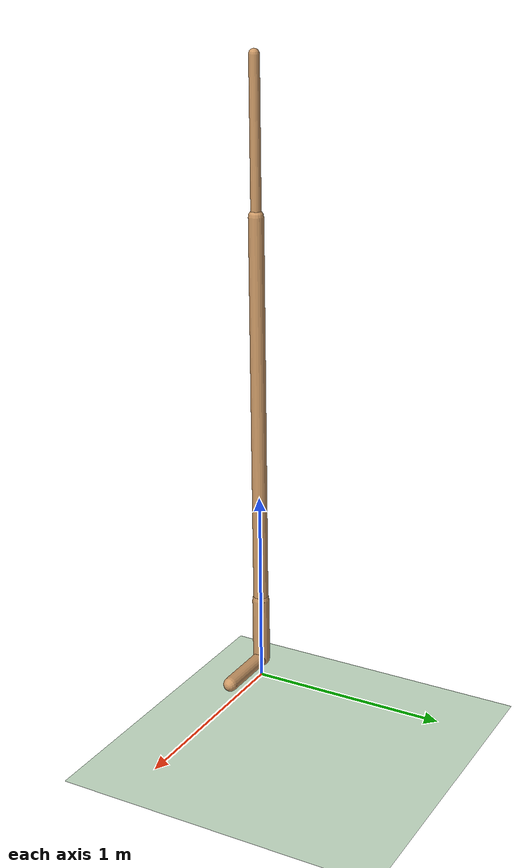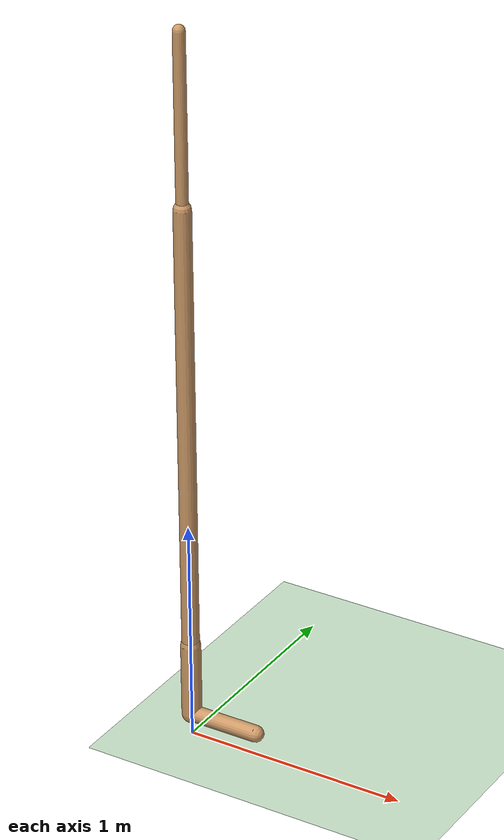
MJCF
<mujoco model="walker2d">
  <compiler angle="degree" inertiafromgeom="true" />
  <default>
    <joint armature="0.01" damping=".1" limited="true" />
    <geom conaffinity="0" condim="3" contype="1" density="1000" friction=".7 .1 .1" rgba="0.8 0.6 .4 1" />
  </default>
  <option integrator="RK4" timestep="0.002" />
  <worldbody>
    <light cutoff="100" diffuse="1 1 1" dir="-0 0 -1.3" directional="true" exponent="1" pos="0 0 1.3" specular=".1 .1 .1" />
    <geom conaffinity="1" condim="3" name="floor" pos="0 0 0" rgba="0.8 0.9 0.8 1" size="40 40 40" type="plane" material="MatPlane" />
    <body name="torso" pos="0 0 2.7992141008377076">
      <camera name="track" mode="trackcom" pos="0 -5 -1.25" xyaxes="1 0 0 0 0 1" />
      <joint armature="0" axis="1 0 0" damping="0" limited="false" name="rootx" pos="0 0 -1.25" stiffness="0" type="slide" />
      <joint armature="0" axis="0 0 1" damping="0" limited="false" name="rootz" pos="0 0 -1.25" ref="1.25" stiffness="0" type="slide" />
      <joint armature="0" axis="0 1 0" damping="0" limited="false" name="rooty" pos="0 0 0" stiffness="0" type="hinge" />
      <geom friction="0.9" name="torso_geom" size="0.025823641568422318 0.3715420961380005" type="capsule" />
      <body name="thigh" pos="0 0 -0.3715420961380005">
        <joint axis="0 -1 0" name="thigh_joint" pos="0 0 0" range="-150 0" type="hinge" />
        <site name="torso_thigh_site" pos="0 0 0" size="0.01" type="sphere" rgba="1 0 0 0.5" />
        <geom friction="0.9" pos="0 0 -0.9955577850341797" name="thigh_geom" size="0.03779085725545883 0.9955577850341797" type="capsule" />
        <body name="leg" pos="0 0 -2.159393787384033">
          <joint axis="0 -1 0" name="leg_joint" pos="0 0 0.16827821731567383" range="-150 0" type="hinge" />
          <site name="thigh_leg_site" pos="0 0 0.25" size="0.01" type="sphere" rgba="1 0 0 0.5" />
          <geom friction="0.9" name="leg_geom" size="0.04342787712812424 0.16827821731567383" type="capsule" />
          <body name="foot" pos="0.31546908617019653 0 -0.2682782173156738">
            <joint axis="0 -1 0" name="foot_joint" pos="-0.31546908617019653 0 0.1" range="-45 45" type="hinge" />
            <site name="leg_foot_site" pos="-0.2 0 0.1" size="0.01" type="sphere" rgba="1 0 0 0.5" />
            <geom friction="0.9" pos="-0.15773454308509827 0 0.1" quat="0.70710678118654757 0 -0.70710678118654746 0" name="foot_geom" size="0.036285169422626495 0.15773454308509827" type="capsule" />
          </body>
        </body>
      </body>

      <body name="thigh_left" pos="0 0 -0.3715420961380005">
        <joint axis="0 -1 0" name="thigh_left_joint" pos="0 0 0" range="-150 0" type="hinge" />
        <site name="torso_thigh_left_site" pos="0 0 0" size="0.01" type="sphere" rgba="1 0 0 0.5" />
        <geom friction="0.9" name="thigh_left_geom" rgba=".7 .3 .6 1" size="0.03779085725545883 0.9955577850341797" pos="0 0 -0.9955577850341797" type="capsule" />
        <body name="leg_left" pos="0 0 -2.159393787384033">
          <joint axis="0 -1 0" name="leg_left_joint" pos="0 0 0.16827821731567383" range="-150 0" type="hinge" />
          <site name="thigh_leg_left_site" pos="0 0 0.25" size="0.01" type="sphere" rgba="1 0 0 0.5" />
          <geom friction="0.9" name="leg_left_geom" rgba=".7 .3 .6 1" size="0.04342787712812424 0.16827821731567383" type="capsule" />
          <body name="foot_left" pos="0.31546908617019653 0 -0.2682782173156738">
            <joint axis="0 -1 0" name="foot_left_joint" pos="-0.31546908617019653 0 0.1" range="-45 45" type="hinge" />
            <site name="leg_foot_left_site" pos="-0.2 0 0.1" size="0.01" type="sphere" rgba="1 0 0 0.5" />
            <geom friction="1.9" name="foot_left_geom" rgba=".7 .3 .6 1" size="0.036285169422626495 0.15773454308509827" pos="-0.15773454308509827 0 0.1" type="capsule" quat="0.70710678118654757 0 -0.70710678118654746 0" />
          </body>
        </body>
      </body>
    </body>
  </worldbody>
  <actuator>

    <motor ctrllimited="true" ctrlrange="-1.0 1.0" gear="252.7652884836529" joint="thigh_joint" />
    <motor ctrllimited="true" ctrlrange="-1.0 1.0" gear="79.34235960678454" joint="leg_joint" />
    <motor ctrllimited="true" ctrlrange="-1.0 1.0" gear="57.68762000038645" joint="foot_joint" />
    <motor ctrllimited="true" ctrlrange="-1.0 1.0" gear="252.7652884836529" joint="thigh_left_joint" />
    <motor ctrllimited="true" ctrlrange="-1.0 1.0" gear="79.34235960678454" joint="leg_left_joint" />
    <motor ctrllimited="true" ctrlrange="-1.0 1.0" gear="57.68762000038645" joint="foot_left_joint" />

  </actuator>
    <asset>
        <texture type="skybox" builtin="gradient" rgb1=".4 .5 .6" rgb2="0 0 0" width="100" height="100" />
        <texture builtin="flat" height="1278" mark="cross" markrgb="1 1 1" name="texgeom" random="0.01" rgb1="0.8 0.6 0.4" rgb2="0.8 0.6 0.4" type="cube" width="127" />
        <texture builtin="checker" height="100" name="texplane" rgb1="0 0 0" rgb2="0.8 0.8 0.8" type="2d" width="100" />
        <material name="MatPlane" reflectance="0.5" shininess="1" specular="1" texrepeat="60 60" texture="texplane" />
        <material name="geom" texture="texgeom" texuniform="true" />
    </asset>

  <sensor>
    <force site="torso_thigh_site" name="torso_thigh_sensor" />
    <force site="thigh_leg_site" name="thigh_leg_sensor" />
    <force site="leg_foot_site" name="leg_foot_sensor" />
    <force site="torso_thigh_left_site" name="torso_thigh_left_sensor" />
    <force site="thigh_leg_left_site" name="thigh_leg_left_sensor" />
    <force site="leg_foot_left_site" name="leg_foot_left_sensor" />
  </sensor>
</mujoco>
